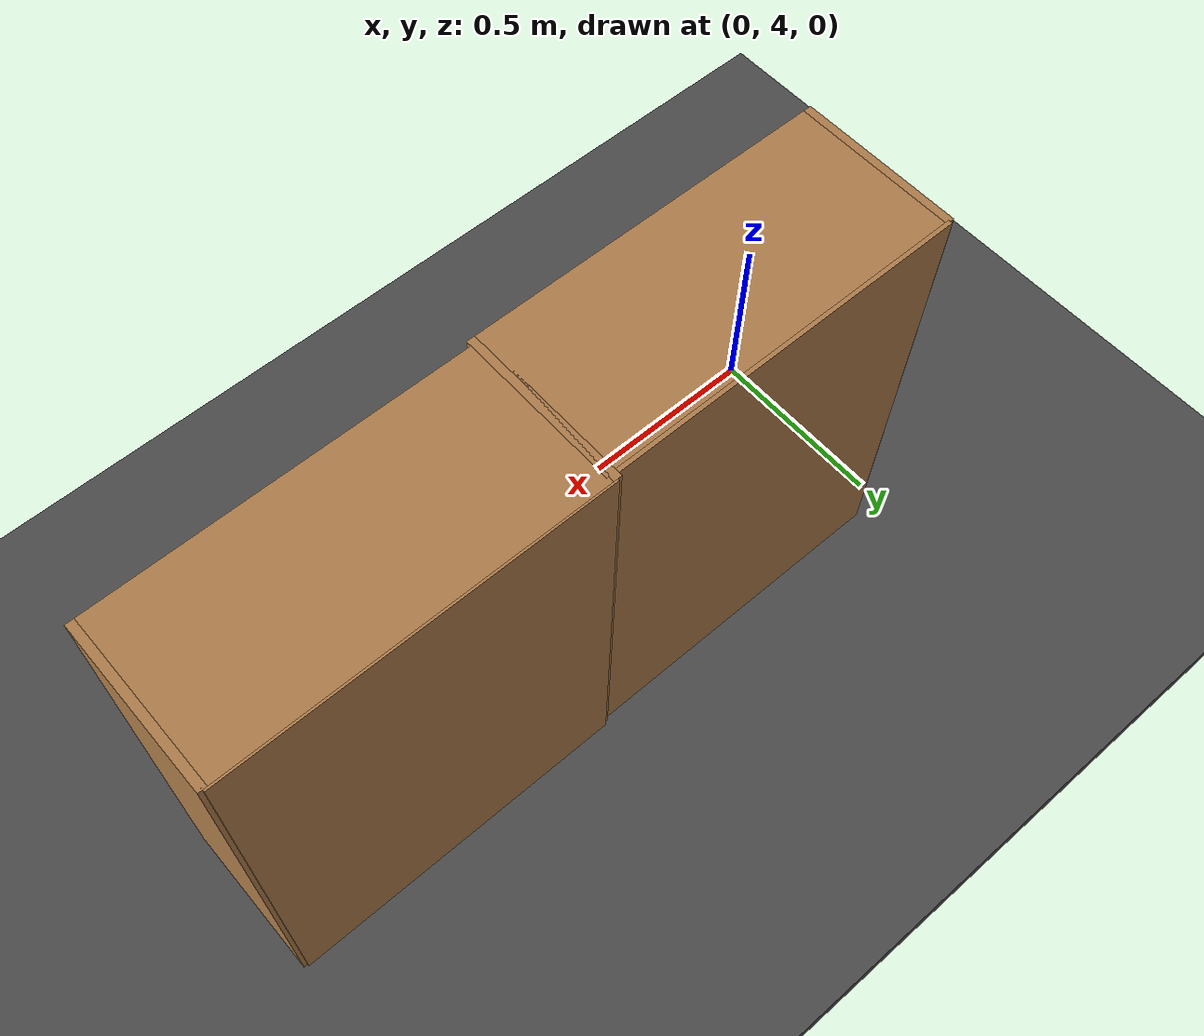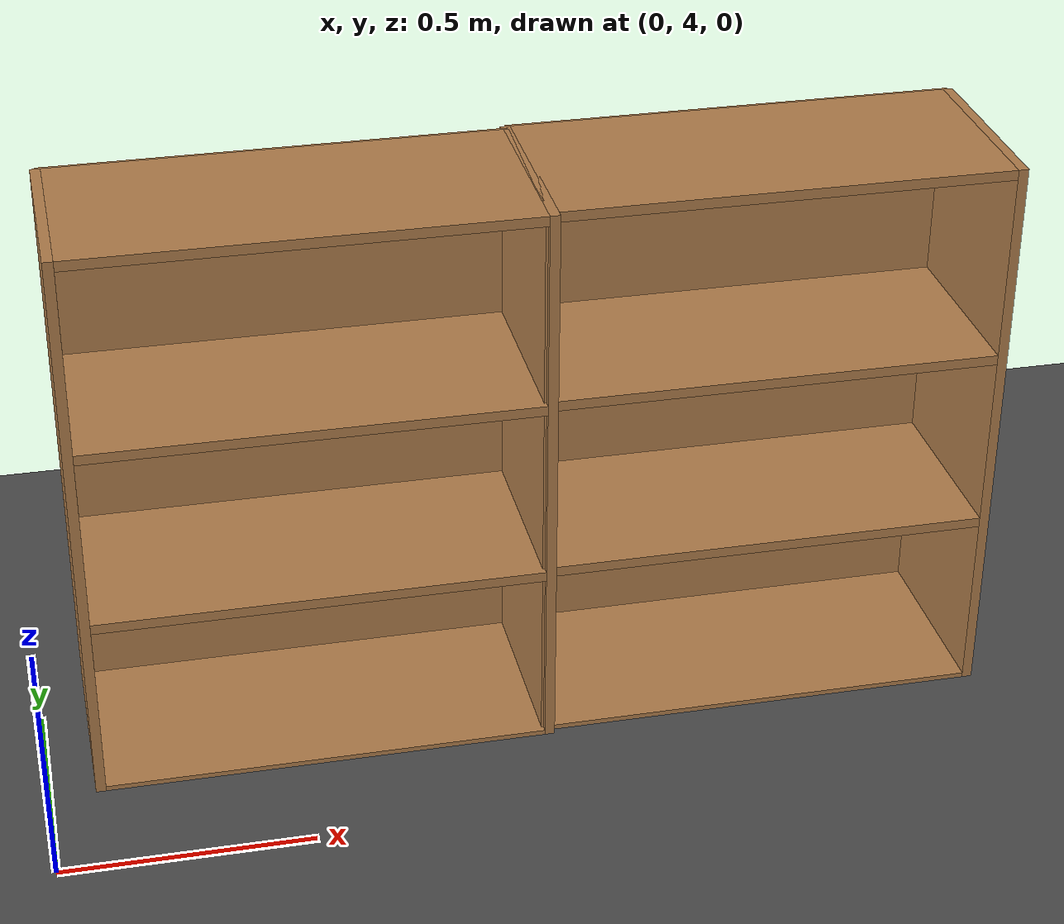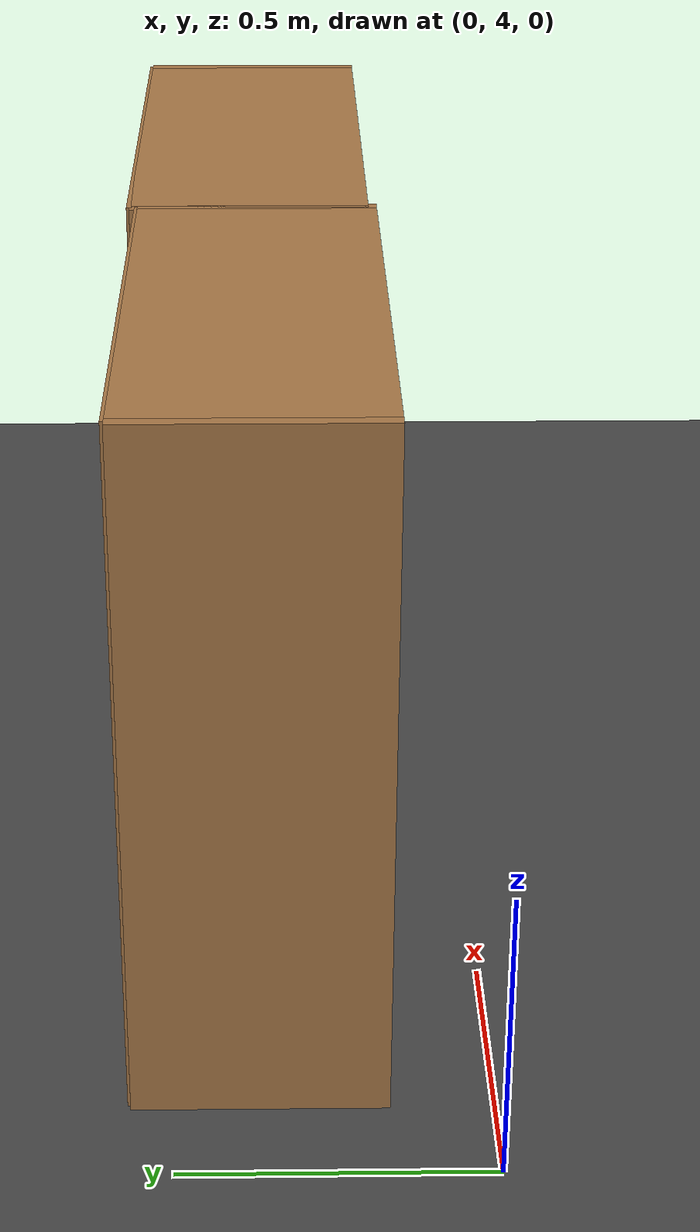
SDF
<sdf version="1.5">
 <world name="default">
  <light name="sun" type="directional">
   <pose>0 0 10 0 -0 0</pose>
   <diffuse>0.8 0.8 0.8 1</diffuse>
   <specular>0.2 0.2 0.2 1</specular>
   <attenuation>
    <range>1000</range>
    <constant>0.9</constant>
    <linear>0.01</linear>
    <quadratic>0.001</quadratic>
   </attenuation>
   <direction>-0.5 0.1 -0.9</direction>
  </light>
  <model name="ground_plane">
   <static>1</static>
   <link name="link">
    <collision name="collision">
     <geometry><plane><normal>0 0 1</normal><size>100 100</size></plane></geometry>
     <surface><friction><ode><mu>100</mu><mu2>50</mu2></ode></friction></surface>
    </collision>
    <visual name="visual">
     <cast_shadows>0</cast_shadows>
     <geometry><plane><normal>0 0 1</normal><size>100 100</size></plane></geometry>
     <material>
      <script><uri>file://media/materials/scripts/gazebo.material</uri><name>Gazebo/Grey</name></script>
     </material>
    </visual>
   </link>
  </model>
  <physics name="default_physics" default="0" type="ode">
   <max_step_size>0.001</max_step_size>
   <real_time_factor>1</real_time_factor>
   <real_time_update_rate>1000</real_time_update_rate>
   <gravity>0 0 -9.8</gravity>
   <magnetic_field>5.5645e-06 2.28758e-05 -4.23884e-05</magnetic_field>
  </physics>
  <scene><ambient>0.4 0.4 0.4 1</ambient><background>0.7 0.7 0.7 1</background><shadows>1</shadows></scene>
  <spherical_coordinates>
   <surface_model>EARTH_WGS84</surface_model>
   <latitude_deg>0</latitude_deg>
   <longitude_deg>0</longitude_deg>
   <elevation>0</elevation>
   <heading_deg>0</heading_deg>
  </spherical_coordinates>
  <model name="asphalt_plane">
   <static>1</static>
   <link name="link">
    <collision name="collision"><geometry><box><size>20 20 0.1</size></box></geometry></collision>
    <visual name="visual">
     <cast_shadows>0</cast_shadows>
     <geometry><box><size>20 20 0.1</size></box></geometry>
     <material>
      <script>
       <uri>model://asphalt_plane/materials/scripts</uri>
       <uri>model://asphalt_plane/materials/textures</uri>
       <name>vrc/asphalt</name>
      </script>
     </material>
    </visual>
   </link>
   <pose>-3.47553 0 0 0 -0 0</pose>
  </model>
  <model name="bookshelf">
   <static>1</static>
   <link name="link">
    <inertial><mass>1</mass></inertial>
    <collision name="back">
     <pose>0 0.005 0.6 0 -0 0</pose>
     <geometry><box><size>0.9 0.01 1.2</size></box></geometry>
    </collision>
    <visual name="visual1">
     <pose>0 0.005 0.6 0 -0 0</pose>
     <geometry><box><size>0.9 0.01 1.2</size></box></geometry>
     <material>
      <script><uri>file://media/materials/scripts/gazebo.material</uri><name>Gazebo/Wood</name></script>
     </material>
    </visual>
    <collision name="left_side">
     <pose>0.45 -0.195 0.6 0 -0 0</pose>
     <geometry><box><size>0.02 0.4 1.2</size></box></geometry>
    </collision>
    <visual name="visual2">
     <pose>0.45 -0.195 0.6 0 -0 0</pose>
     <geometry><box><size>0.02 0.4 1.2</size></box></geometry>
     <material>
      <script><uri>file://media/materials/scripts/gazebo.material</uri><name>Gazebo/Wood</name></script>
     </material>
    </visual>
    <collision name="right_side">
     <pose>-0.45 -0.195 0.6 0 -0 0</pose>
     <geometry><box><size>0.02 0.4 1.2</size></box></geometry>
    </collision>
    <visual name="visual3">
     <pose>-0.45 -0.195 0.6 0 -0 0</pose>
     <geometry><box><size>0.02 0.4 1.2</size></box></geometry>
     <material>
      <script><uri>file://media/materials/scripts/gazebo.material</uri><name>Gazebo/Wood</name></script>
     </material>
    </visual>
    <collision name="bottom">
     <pose>0 -0.195 0.03 0 -0 0</pose>
     <geometry><box><size>0.88 0.4 0.06</size></box></geometry>
    </collision>
    <visual name="visual4">
     <pose>0 -0.195 0.03 0 -0 0</pose>
     <geometry><box><size>0.88 0.4 0.06</size></box></geometry>
     <material>
      <script><uri>file://media/materials/scripts/gazebo.material</uri><name>Gazebo/Wood</name></script>
     </material>
    </visual>
    <collision name="top">
     <pose>0 -0.195 1.19 0 -0 0</pose>
     <geometry><box><size>0.88 0.4 0.02</size></box></geometry>
    </collision>
    <visual name="visual5">
     <pose>0 -0.195 1.19 0 -0 0</pose>
     <geometry><box><size>0.88 0.4 0.02</size></box></geometry>
     <material>
      <script><uri>file://media/materials/scripts/gazebo.material</uri><name>Gazebo/Wood</name></script>
     </material>
    </visual>
    <collision name="low_shelf">
     <pose>0 -0.195 0.43 0 -0 0</pose>
     <geometry><box><size>0.88 0.4 0.02</size></box></geometry>
    </collision>
    <visual name="visual6">
     <pose>0 -0.195 0.43 0 -0 0</pose>
     <geometry><box><size>0.88 0.4 0.02</size></box></geometry>
     <material>
      <script><uri>file://media/materials/scripts/gazebo.material</uri><name>Gazebo/Wood</name></script>
     </material>
    </visual>
    <collision name="high_shelf">
     <pose>0 -0.195 0.8 0 -0 0</pose>
     <geometry><box><size>0.88 0.4 0.02</size></box></geometry>
    </collision>
    <visual name="visual7">
     <pose>0 -0.195 0.8 0 -0 0</pose>
     <geometry><box><size>0.88 0.4 0.02</size></box></geometry>
     <material>
      <script><uri>file://media/materials/scripts/gazebo.material</uri><name>Gazebo/Wood</name></script>
     </material>
    </visual>
   </link>
   <pose>1.44624 4.57714 0 0 -0 0</pose>
  </model>
  <model name="bookshelf_0">
   <static>1</static>
   <link name="link">
    <inertial><mass>1</mass></inertial>
    <collision name="back">
     <pose>0 0.005 0.6 0 -0 0</pose>
     <geometry><box><size>0.9 0.01 1.2</size></box></geometry>
    </collision>
    <visual name="visual1">
     <pose>0 0.005 0.6 0 -0 0</pose>
     <geometry><box><size>0.9 0.01 1.2</size></box></geometry>
     <material>
      <script><uri>file://media/materials/scripts/gazebo.material</uri><name>Gazebo/Wood</name></script>
     </material>
    </visual>
    <collision name="left_side">
     <pose>0.45 -0.195 0.6 0 -0 0</pose>
     <geometry><box><size>0.02 0.4 1.2</size></box></geometry>
    </collision>
    <visual name="visual2">
     <pose>0.45 -0.195 0.6 0 -0 0</pose>
     <geometry><box><size>0.02 0.4 1.2</size></box></geometry>
     <material>
      <script><uri>file://media/materials/scripts/gazebo.material</uri><name>Gazebo/Wood</name></script>
     </material>
    </visual>
    <collision name="right_side">
     <pose>-0.45 -0.195 0.6 0 -0 0</pose>
     <geometry><box><size>0.02 0.4 1.2</size></box></geometry>
    </collision>
    <visual name="visual3">
     <pose>-0.45 -0.195 0.6 0 -0 0</pose>
     <geometry><box><size>0.02 0.4 1.2</size></box></geometry>
     <material>
      <script><uri>file://media/materials/scripts/gazebo.material</uri><name>Gazebo/Wood</name></script>
     </material>
    </visual>
    <collision name="bottom">
     <pose>0 -0.195 0.03 0 -0 0</pose>
     <geometry><box><size>0.88 0.4 0.06</size></box></geometry>
    </collision>
    <visual name="visual4">
     <pose>0 -0.195 0.03 0 -0 0</pose>
     <geometry><box><size>0.88 0.4 0.06</size></box></geometry>
     <material>
      <script><uri>file://media/materials/scripts/gazebo.material</uri><name>Gazebo/Wood</name></script>
     </material>
    </visual>
    <collision name="top">
     <pose>0 -0.195 1.19 0 -0 0</pose>
     <geometry><box><size>0.88 0.4 0.02</size></box></geometry>
    </collision>
    <visual name="visual5">
     <pose>0 -0.195 1.19 0 -0 0</pose>
     <geometry><box><size>0.88 0.4 0.02</size></box></geometry>
     <material>
      <script><uri>file://media/materials/scripts/gazebo.material</uri><name>Gazebo/Wood</name></script>
     </material>
    </visual>
    <collision name="low_shelf">
     <pose>0 -0.195 0.43 0 -0 0</pose>
     <geometry><box><size>0.88 0.4 0.02</size></box></geometry>
    </collision>
    <visual name="visual6">
     <pose>0 -0.195 0.43 0 -0 0</pose>
     <geometry><box><size>0.88 0.4 0.02</size></box></geometry>
     <material>
      <script><uri>file://media/materials/scripts/gazebo.material</uri><name>Gazebo/Wood</name></script>
     </material>
    </visual>
    <collision name="high_shelf">
     <pose>0 -0.195 0.8 0 -0 0</pose>
     <geometry><box><size>0.88 0.4 0.02</size></box></geometry>
    </collision>
    <visual name="visual7">
     <pose>0 -0.195 0.8 0 -0 0</pose>
     <geometry><box><size>0.88 0.4 0.02</size></box></geometry>
     <material>
      <script><uri>file://media/materials/scripts/gazebo.material</uri><name>Gazebo/Wood</name></script>
     </material>
    </visual>
   </link>
   <pose>0.55088 4.5637 0 0 -0 0</pose>
  </model>
 </world>
</sdf>
